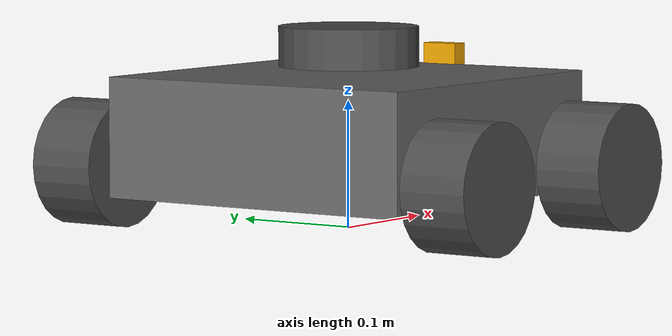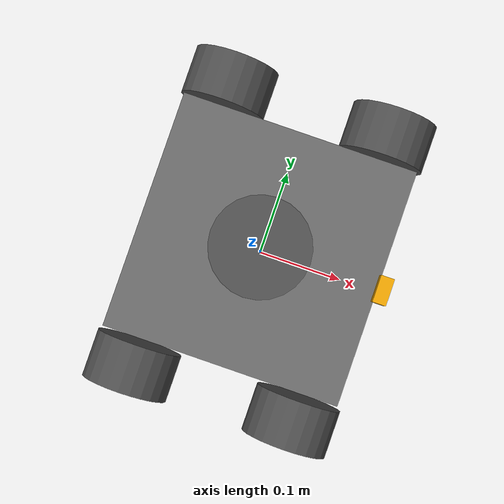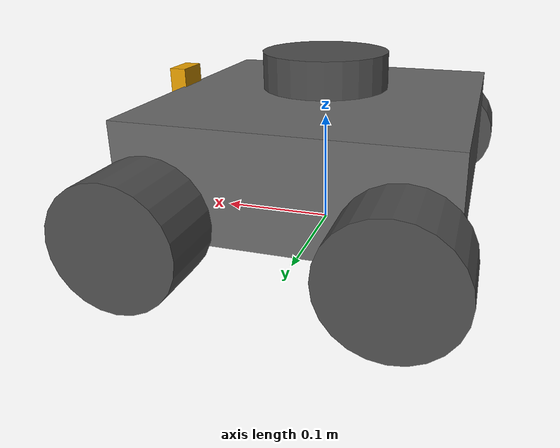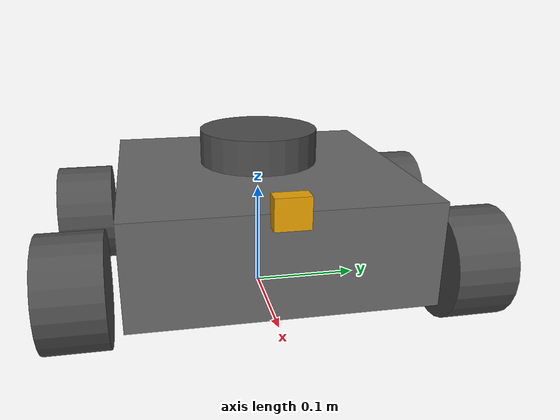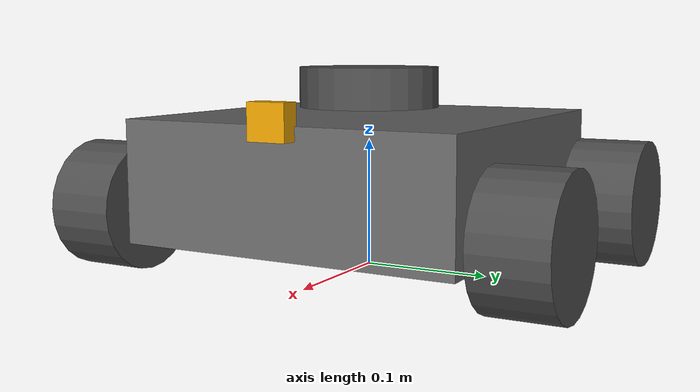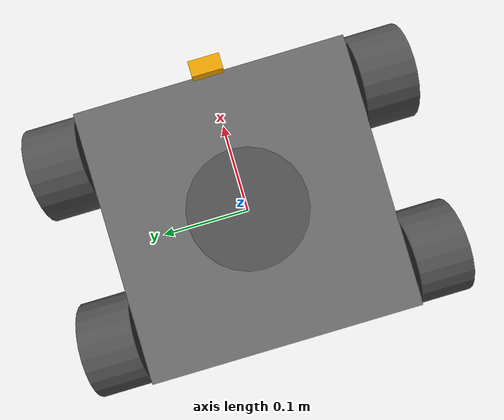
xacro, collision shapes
<?xml version="1.0" ?>
<robot name="turtlebot3_mecanum" xmlns:xacro="http://ros.org/wiki/xacro">
  <xacro:include filename="$(find turtlebot3_description)/urdf/common_properties.xacro"/>

  <link name="base_footprint"/>

  <joint name="base_joint" type="fixed">
    <parent link="base_footprint"/>
    <child link="base_link" />
    <origin xyz="0 0 0.027" rpy="0 0 0"/>
  </joint>

  <link name="base_link">
    <visual>
      <origin xyz="0 0 0" rpy="0 0 0"/>
      <geometry>
        <mesh filename="package://turtlebot3_description/meshes/bases/waffle_pi_base.stl" scale="0.001 0.001 0.001"/>
      </geometry>
      <material name="light_black"/>
    </visual>

    <collision>
      <origin xyz="0 0 0.047" rpy="0 0 0"/>
      <geometry>
        <box size="0.266 0.266 0.094"/>
      </geometry>
    </collision>

    <inertial>
      <origin xyz="0 0 0" rpy="0 0 0"/>
      <mass value="1.3729096e+00"/>
      <inertia ixx="8.7002718e-03" ixy="-4.7576583e-05" ixz="1.1160499e-04"
               iyy="8.6195418e-03" iyz="-3.5422299e-06"
               izz="1.4612727e-02" />
    </inertial>
  </link>

  <joint name="wheel_left_joint" type="continuous">
    <parent link="base_link"/>
    <child link="wheel_left_link"/>
    <origin xyz="0.096 0.171 0.023" rpy="-1.57 0 0"/>
    <axis xyz="0 0 1"/>
  </joint>

  <link name="wheel_left_link">
    <visual>
      <origin xyz="0 0 0" rpy="1.57 0 0"/>
      <geometry>
        <mesh filename="package://turtlebot3_description/meshes/wheels/left_tire.stl" scale="0.0015 0.003 0.0015"/>
      </geometry>
      <material name="dark"/>
    </visual>

    <collision>
      <origin xyz="0 0 0" rpy="0 0 0"/>
      <geometry>
        <cylinder length="0.055" radius="0.05"/>
      </geometry>
    </collision>

    <inertial>
      <origin xyz="0 0 0" />
      <mass value="2.8498940e-02" />
      <inertia ixx="1.1175580e-05" ixy="-4.2369783e-11" ixz="-5.9381719e-09"
               iyy="1.1192413e-05" iyz="-1.4400107e-11"
               izz="2.0712558e-05" />
      </inertial>
  </link>

  <joint name="wheel_right_joint" type="continuous">
    <parent link="base_link"/>
    <child link="wheel_right_link"/>
    <origin xyz="0.096 -0.171 0.023" rpy="-1.57 0 0"/>
    <axis xyz="0 0 1"/>
  </joint>

  <link name="wheel_right_link">
    <visual>
      <origin xyz="0 0 0" rpy="1.57 0 0"/>
      <geometry>
        <mesh filename="package://turtlebot3_description/meshes/wheels/right_tire.stl" scale="0.0015 0.003 0.0015"/>
      </geometry>
      <material name="dark"/>
    </visual>

    <collision>
      <origin xyz="0 0 0" rpy="0 0 0"/>
      <geometry>
        <cylinder length="0.055" radius="0.05"/>
      </geometry>
    </collision>

    <inertial>
      <origin xyz="0 0 0" />
      <mass value="2.8498940e-02" />
      <inertia ixx="1.1175580e-05" ixy="-4.2369783e-11" ixz="-5.9381719e-09"
               iyy="1.1192413e-05" iyz="-1.4400107e-11"
               izz="2.0712558e-05" />
      </inertial>
  </link>

  <joint name="wheel_rear_left_joint" type="continuous">
    <parent link="base_link"/>
    <child link="wheel_rear_left_link"/>
    <origin xyz="-0.096 0.171 0.023" rpy="-1.57 0 0"/>
    <axis xyz="0 0 1"/>
  </joint>

  <link name="wheel_rear_left_link">
    <visual>
      <origin xyz="0 0 0" rpy="1.57 0 0"/>
      <geometry>
        <mesh filename="package://turtlebot3_description/meshes/wheels/left_tire.stl" scale="0.0015 0.003 0.0015"/>
      </geometry>
      <material name="dark"/>
    </visual>

    <collision>
      <origin xyz="0 0 0" rpy="0 0 0"/>
      <geometry>
        <cylinder length="0.055" radius="0.05"/>
      </geometry>
    </collision>

    <inertial>
      <origin xyz="0 0 0" />
      <mass value="2.8498940e-02" />
      <inertia ixx="1.1175580e-05" ixy="-4.2369783e-11" ixz="-5.9381719e-09"
               iyy="1.1192413e-05" iyz="-1.4400107e-11"
               izz="2.0712558e-05" />
      </inertial>
  </link>

  <joint name="wheel_rear_right_joint" type="continuous">
    <parent link="base_link"/>
    <child link="wheel_rear_right_link"/>
    <origin xyz="-0.096 -0.171 0.023" rpy="-1.57 0 0"/>
    <axis xyz="0 0 1"/>
  </joint>

  <link name="wheel_rear_right_link">
    <visual>
      <origin xyz="0 0 0" rpy="1.57 0 0"/>
      <geometry>
        <mesh filename="package://turtlebot3_description/meshes/wheels/right_tire.stl" scale="0.0015 0.003 0.0015"/>
      </geometry>
      <material name="dark"/>
    </visual>

    <collision>
      <origin xyz="0 0 0" rpy="0 0 0"/>
      <geometry>
        <cylinder length="0.055" radius="0.05"/>
      </geometry>
    </collision>

    <inertial>
      <origin xyz="0 0 0" />
      <mass value="2.8498940e-02" />
      <inertia ixx="1.1175580e-05" ixy="-4.2369783e-11" ixz="-5.9381719e-09"
               iyy="1.1192413e-05" iyz="-1.4400107e-11"
               izz="2.0712558e-05" />
      </inertial>
  </link>

  <joint name="imu_joint" type="fixed">
    <parent link="base_link"/>
    <child link="imu_link"/>
    <origin xyz="0.0 0 0.068" rpy="0 0 0"/>
  </joint>

  <link name="imu_link"/>

  <joint name="scan_joint" type="fixed">
    <parent link="base_link"/>
    <child link="base_scan"/>
    <origin xyz="0 0 0.122" rpy="0 0 0"/>
  </joint>

  <link name="base_scan">
    <visual>
      <origin xyz="0 0 0.0" rpy="0 0 0"/>
      <geometry>
        <mesh filename="package://turtlebot3_description/meshes/sensors/lds.stl" scale="0.001 0.001 0.001"/>
      </geometry>
      <material name="dark"/>
    </visual>

    <collision>
      <origin xyz="0 0 -0.0065" rpy="0 0 0"/>
      <geometry>
        <cylinder length="0.0315" radius="0.055"/>
      </geometry>
    </collision>

    <inertial>
      <mass value="0.114" />
      <origin xyz="0 0 0" />
      <inertia ixx="0.001" ixy="0.0" ixz="0.0"
               iyy="0.001" iyz="0.0"
               izz="0.001" />
    </inertial>
  </link>

  <joint name="camera_joint" type="fixed">
    <origin xyz="0.133 -0.011 0.084" rpy="0 0 0"/>
    <parent link="base_link"/>
    <child link="camera_link"/>
  </joint>

  <link name="camera_link">
    <collision>
      <origin xyz="0.005 0.011 0.013" rpy="0 0 0"/>
      <geometry>
        <box size="0.015 0.030 0.027"/>
      </geometry>
    </collision>
  </link>

  <joint name="camera_rgb_joint" type="fixed">
    <origin xyz="0.003 0.011 0.009" rpy="0 0 0"/>
    <parent link="camera_link"/>
    <child link="camera_rgb_frame"/>
  </joint>
  <link name="camera_rgb_frame"/>

  <joint name="camera_rgb_optical_joint" type="fixed">
    <origin xyz="0 0 0" rpy="-1.57 0 -1.57"/>
    <parent link="camera_rgb_frame"/>
    <child link="camera_rgb_optical_frame"/>
  </joint>
  <link name="camera_rgb_optical_frame"/>

</robot>

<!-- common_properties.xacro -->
<robot name="xacro_properties" xmlns:xacro="http://ros.org/wiki/xacro">

  <!-- Init colour -->
  <material name="black">
      <color rgba="0.0 0.0 0.0 1.0"/>
  </material>

  <material name="dark">
    <color rgba="0.3 0.3 0.3 1.0"/>
  </material>
  <material name="light_black">
    <color rgba="0.4 0.4 0.4 1.0"/>
  </material>

  <material name="blue">
    <color rgba="0.0 0.0 0.8 1.0"/>
  </material>

  <material name="green">
    <color rgba="0.0 0.8 0.0 1.0"/>
  </material>

  <material name="grey">
    <color rgba="0.5 0.5 0.5 1.0"/>
  </material>

  <material name="light_grey">
    <color rgba="${211/255} ${211/255} ${211/255} 1.0"/>
  </material>

  <material name="orange">
    <color rgba="${255/255} ${108/255} ${10/255} 1.0"/>
  </material>

  <material name="brown">
    <color rgba="${222/255} ${207/255} ${195/255} 1.0"/>
  </material>

  <material name="red">
    <color rgba="0.8 0.0 0.0 1.0"/>
  </material>

  <material name="white">
    <color rgba="1.0 1.0 1.0 1.0"/>
  </material>
</robot>
